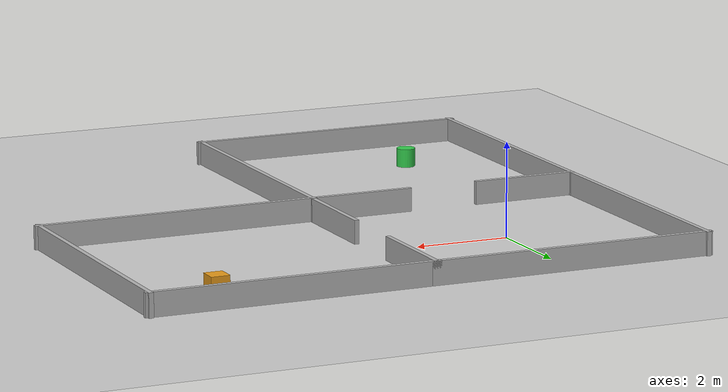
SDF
<?xml version="1.0" ?>
<sdf version="1.6">
  <world name="minidog_world">
    <physics name="4ms" type="ignored">
      <max_step_size>0.004</max_step_size>
      <!-- 1x real-time: ensures stable timing for controller + SLAM -->
      <real_time_factor>1.0</real_time_factor>
    </physics>
    <plugin filename="ignition-gazebo-physics-system" name="gz::sim::systems::Physics"/>
    <!-- Required for sensors (lidar/camera) to publish topics -->
    <plugin filename="ignition-gazebo-sensors-system" name="gz::sim::systems::Sensors">
      <render_engine>ogre2</render_engine>
    </plugin>
    <plugin filename="ignition-gazebo-user-commands-system" name="gz::sim::systems::UserCommands"/>
    <plugin filename="ignition-gazebo-scene-broadcaster-system" name="gz::sim::systems::SceneBroadcaster"/>
    <plugin filename="ignition-gazebo-contact-system" name="gz::sim::systems::Contact"/>
    <!-- Required for IMU sensors to publish topics -->
    <plugin filename="ignition-gazebo-imu-system" name="gz::sim::systems::Imu"/>

    <light type="directional" name="sun">
      <cast_shadows>true</cast_shadows>
      <pose>0 0 10 0 0 0</pose>
      <diffuse>0.8 0.8 0.8 1</diffuse>
      <specular>0.2 0.2 0.2 1</specular>
      <attenuation>
        <range>1000</range>
        <constant>0.9</constant>
        <linear>0.01</linear>
        <quadratic>0.001</quadratic>
      </attenuation>
      <direction>-0.5 0.1 -0.9</direction>
    </light>

    <model name="ground_plane">
      <static>true</static>
      <link name="link">
        <collision name="collision">
          <geometry>
            <plane>
              <normal>0 0 1</normal>
              <size>100 100</size>
            </plane>
          </geometry>
        </collision>
        <visual name="visual">
          <geometry>
            <plane>
              <normal>0 0 1</normal>
              <size>100 100</size>
            </plane>
          </geometry>
          <material>
            <ambient>0.8 0.8 0.8 1</ambient>
            <diffuse>0.8 0.8 0.8 1</diffuse>
            <specular>0.8 0.8 0.8 1</specular>
          </material>
        </visual>
      </link>
    </model>

    <!-- ===== Room 1: 6x6 m, center at origin ===== -->

    <!-- North wall (full, y=3) -->
    <model name="r1_wall_north">
      <static>true</static>
      <pose>0 3 0.25 0 0 0</pose>
      <link name="link">
        <collision name="collision">
          <geometry><box><size>6.2 0.1 0.5</size></box></geometry>
        </collision>
        <visual name="visual">
          <geometry><box><size>6.2 0.1 0.5</size></box></geometry>
          <material><diffuse>0.7 0.7 0.7 1</diffuse></material>
        </visual>
      </link>
    </model>

    <!-- West wall (full, x=-3) -->
    <model name="r1_wall_west">
      <static>true</static>
      <pose>-3 0 0.25 0 0 0</pose>
      <link name="link">
        <collision name="collision">
          <geometry><box><size>0.1 6.2 0.5</size></box></geometry>
        </collision>
        <visual name="visual">
          <geometry><box><size>0.1 6.2 0.5</size></box></geometry>
          <material><diffuse>0.7 0.7 0.7 1</diffuse></material>
        </visual>
      </link>
    </model>

    <!-- South wall with doorway (gap at x=0, 1.5m wide) -->
    <model name="r1_wall_south_left">
      <static>true</static>
      <pose>-1.875 -3 0.25 0 0 0</pose>
      <link name="link">
        <collision name="collision">
          <geometry><box><size>2.25 0.1 0.5</size></box></geometry>
        </collision>
        <visual name="visual">
          <geometry><box><size>2.25 0.1 0.5</size></box></geometry>
          <material><diffuse>0.7 0.7 0.7 1</diffuse></material>
        </visual>
      </link>
    </model>
    <model name="r1_wall_south_right">
      <static>true</static>
      <pose>1.875 -3 0.25 0 0 0</pose>
      <link name="link">
        <collision name="collision">
          <geometry><box><size>2.25 0.1 0.5</size></box></geometry>
        </collision>
        <visual name="visual">
          <geometry><box><size>2.25 0.1 0.5</size></box></geometry>
          <material><diffuse>0.7 0.7 0.7 1</diffuse></material>
        </visual>
      </link>
    </model>

    <!-- East wall with doorway (gap at y=0, 1.5m wide) -->
    <model name="r1_wall_east_top">
      <static>true</static>
      <pose>3 1.875 0.25 0 0 0</pose>
      <link name="link">
        <collision name="collision">
          <geometry><box><size>0.1 2.25 0.5</size></box></geometry>
        </collision>
        <visual name="visual">
          <geometry><box><size>0.1 2.25 0.5</size></box></geometry>
          <material><diffuse>0.7 0.7 0.7 1</diffuse></material>
        </visual>
      </link>
    </model>
    <model name="r1_wall_east_bottom">
      <static>true</static>
      <pose>3 -1.875 0.25 0 0 0</pose>
      <link name="link">
        <collision name="collision">
          <geometry><box><size>0.1 2.25 0.5</size></box></geometry>
        </collision>
        <visual name="visual">
          <geometry><box><size>0.1 2.25 0.5</size></box></geometry>
          <material><diffuse>0.7 0.7 0.7 1</diffuse></material>
        </visual>
      </link>
    </model>

    <!-- ===== Room 2: 6x6 m, east of Room 1 ===== -->

    <!-- North wall (y=3, x=3..9) -->
    <model name="r2_wall_north">
      <static>true</static>
      <pose>6 3 0.25 0 0 0</pose>
      <link name="link">
        <collision name="collision">
          <geometry><box><size>6.2 0.1 0.5</size></box></geometry>
        </collision>
        <visual name="visual">
          <geometry><box><size>6.2 0.1 0.5</size></box></geometry>
          <material><diffuse>0.7 0.7 0.7 1</diffuse></material>
        </visual>
      </link>
    </model>

    <!-- South wall (y=-3, x=3..9) -->
    <model name="r2_wall_south">
      <static>true</static>
      <pose>6 -3 0.25 0 0 0</pose>
      <link name="link">
        <collision name="collision">
          <geometry><box><size>6.2 0.1 0.5</size></box></geometry>
        </collision>
        <visual name="visual">
          <geometry><box><size>6.2 0.1 0.5</size></box></geometry>
          <material><diffuse>0.7 0.7 0.7 1</diffuse></material>
        </visual>
      </link>
    </model>

    <!-- East wall (x=9) -->
    <model name="r2_wall_east">
      <static>true</static>
      <pose>9 0 0.25 0 0 0</pose>
      <link name="link">
        <collision name="collision">
          <geometry><box><size>0.1 6.2 0.5</size></box></geometry>
        </collision>
        <visual name="visual">
          <geometry><box><size>0.1 6.2 0.5</size></box></geometry>
          <material><diffuse>0.7 0.7 0.7 1</diffuse></material>
        </visual>
      </link>
    </model>

    <!-- ===== Room 3: 6x6 m, south of Room 1 ===== -->

    <!-- South wall (y=-9) -->
    <model name="r3_wall_south">
      <static>true</static>
      <pose>0 -9 0.25 0 0 0</pose>
      <link name="link">
        <collision name="collision">
          <geometry><box><size>6.2 0.1 0.5</size></box></geometry>
        </collision>
        <visual name="visual">
          <geometry><box><size>6.2 0.1 0.5</size></box></geometry>
          <material><diffuse>0.7 0.7 0.7 1</diffuse></material>
        </visual>
      </link>
    </model>

    <!-- East wall (x=3, y=-3..-9) -->
    <model name="r3_wall_east">
      <static>true</static>
      <pose>3 -6 0.25 0 0 0</pose>
      <link name="link">
        <collision name="collision">
          <geometry><box><size>0.1 6.2 0.5</size></box></geometry>
        </collision>
        <visual name="visual">
          <geometry><box><size>0.1 6.2 0.5</size></box></geometry>
          <material><diffuse>0.7 0.7 0.7 1</diffuse></material>
        </visual>
      </link>
    </model>

    <!-- West wall (x=-3, y=-3..-9) -->
    <model name="r3_wall_west">
      <static>true</static>
      <pose>-3 -6 0.25 0 0 0</pose>
      <link name="link">
        <collision name="collision">
          <geometry><box><size>0.1 6.2 0.5</size></box></geometry>
        </collision>
        <visual name="visual">
          <geometry><box><size>0.1 6.2 0.5</size></box></geometry>
          <material><diffuse>0.7 0.7 0.7 1</diffuse></material>
        </visual>
      </link>
    </model>

    <!-- Small obstacle in Room 2 (away from doorway) -->
    <model name="obstacle_r2">
      <static>true</static>
      <pose>7.0 1.5 0.15 0 0 0</pose>
      <link name="link">
        <collision name="collision">
          <geometry><box><size>0.4 0.4 0.3</size></box></geometry>
        </collision>
        <visual name="visual">
          <geometry><box><size>0.4 0.4 0.3</size></box></geometry>
          <material><diffuse>0.9 0.6 0.1 1</diffuse></material>
        </visual>
      </link>
    </model>

    <!-- Small obstacle in Room 3 (away from doorway) -->
    <model name="obstacle_r3">
      <static>true</static>
      <pose>-1.0 -7.0 0.2 0 0 0</pose>
      <link name="link">
        <collision name="collision">
          <geometry><cylinder><radius>0.2</radius><length>0.4</length></cylinder></geometry>
        </collision>
        <visual name="visual">
          <geometry><cylinder><radius>0.2</radius><length>0.4</length></cylinder></geometry>
          <material><diffuse>0.2 0.8 0.3 1</diffuse></material>
        </visual>
      </link>
    </model>
  </world>
</sdf>
